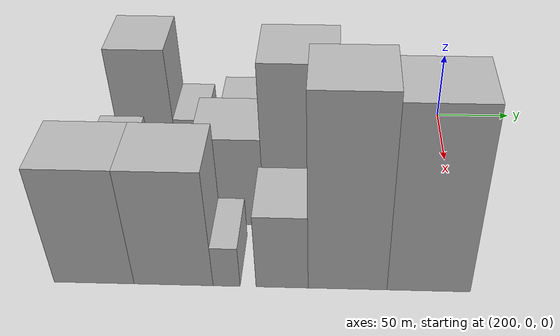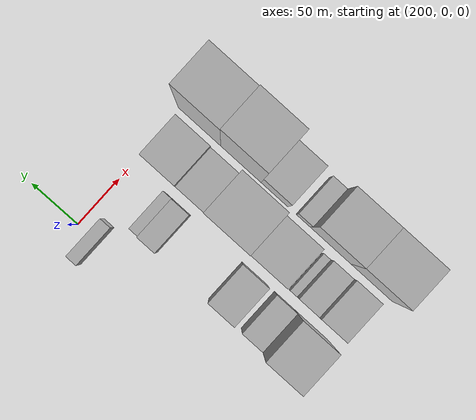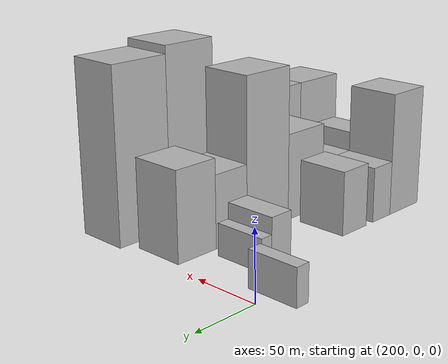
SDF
<sdf version="1.6">
 <world name="default">
  <model name="building_124">
   <static>1</static>
   <pose>198.0000 -18.1444 0 0.000000 0.000000 0.000000</pose>
   <link name="link">
    <pose>0 0 13.50 0 0 0</pose>
    <collision name="collision"><geometry><box><size>40.0000 10.9522 27.0000</size></box></geometry></collision>
    <visual name="visual">
     <cast_shadows>0</cast_shadows>
     <geometry><box><size>40.0000 10.9522 27.0000</size></box></geometry>
     <material>
      <script>
       <uri>model://HANNAS_wall/materials/scripts</uri>
       <uri>model://HANNAS_wall/materials/textures</uri>
       <name>vrc/HANNAS_wall</name>
      </script>
     </material>
    </visual>
   </link>
  </model>
  <model name="building_170">
   <static>1</static>
   <pose>247.0000 -193.7674 0 0.000000 0.000000 0.000000</pose>
   <link name="link">
    <pose>0 0 46.50 0 0 0</pose>
    <collision name="collision"><geometry><box><size>40.0000 36.1437 93.0000</size></box></geometry></collision>
    <visual name="visual">
     <cast_shadows>0</cast_shadows>
     <geometry><box><size>40.0000 36.1437 93.0000</size></box></geometry>
     <material>
      <script>
       <uri>model://HANNAS_wall/materials/scripts</uri>
       <uri>model://HANNAS_wall/materials/textures</uri>
       <name>vrc/HANNAS_wall</name>
      </script>
     </material>
    </visual>
   </link>
  </model>
  <model name="building_171">
   <static>1</static>
   <pose>247.0000 -165.0149 0 0.000000 0.000000 0.000000</pose>
   <link name="link">
    <pose>0 0 21.00 0 0 0</pose>
    <collision name="collision"><geometry><box><size>40.0000 21.3615 42.0000</size></box></geometry></collision>
    <visual name="visual">
     <cast_shadows>0</cast_shadows>
     <geometry><box><size>40.0000 21.3615 42.0000</size></box></geometry>
     <material>
      <script>
       <uri>model://HANNAS_wall/materials/scripts</uri>
       <uri>model://HANNAS_wall/materials/textures</uri>
       <name>vrc/HANNAS_wall</name>
      </script>
     </material>
    </visual>
   </link>
  </model>
  <model name="building_172">
   <static>1</static>
   <pose>247.0000 -132.5725 0 0.000000 0.000000 0.000000</pose>
   <link name="link">
    <pose>0 0 24.00 0 0 0</pose>
    <collision name="collision"><geometry><box><size>40.0000 27.5232 48.0000</size></box></geometry></collision>
    <visual name="visual">
     <cast_shadows>0</cast_shadows>
     <geometry><box><size>40.0000 27.5232 48.0000</size></box></geometry>
     <material>
      <script>
       <uri>model://HANNAS_wall/materials/scripts</uri>
       <uri>model://HANNAS_wall/materials/textures</uri>
       <name>vrc/HANNAS_wall</name>
      </script>
     </material>
    </visual>
   </link>
  </model>
  <model name="building_173">
   <static>1</static>
   <pose>247.0000 -53.6121 0 0.000000 0.000000 0.000000</pose>
   <link name="link">
    <pose>0 0 18.00 0 0 0</pose>
    <collision name="collision"><geometry><box><size>40.0000 18.7992 36.0000</size></box></geometry></collision>
    <visual name="visual">
     <cast_shadows>0</cast_shadows>
     <geometry><box><size>40.0000 18.7992 36.0000</size></box></geometry>
     <material>
      <script>
       <uri>model://HANNAS_wall/materials/scripts</uri>
       <uri>model://HANNAS_wall/materials/textures</uri>
       <name>vrc/HANNAS_wall</name>
      </script>
     </material>
    </visual>
   </link>
  </model>
  <model name="building_174">
   <static>1</static>
   <pose>247.0000 -39.3130 0 0.000000 0.000000 0.000000</pose>
   <link name="link">
    <pose>0 0 12.00 0 0 0</pose>
    <collision name="collision"><geometry><box><size>40.0000 9.7991 24.0000</size></box></geometry></collision>
    <visual name="visual">
     <cast_shadows>0</cast_shadows>
     <geometry><box><size>40.0000 9.7991 24.0000</size></box></geometry>
     <material>
      <script>
       <uri>model://HANNAS_wall/materials/scripts</uri>
       <uri>model://HANNAS_wall/materials/textures</uri>
       <name>vrc/HANNAS_wall</name>
      </script>
     </material>
    </visual>
   </link>
  </model>
  <model name="building_217">
   <static>1</static>
   <pose>296.0000 -204.2049 0 0.000000 0.000000 0.000000</pose>
   <link name="link">
    <pose>0 0 25.50 0 0 0</pose>
    <collision name="collision"><geometry><box><size>40.0000 26.7236 51.0000</size></box></geometry></collision>
    <visual name="visual">
     <cast_shadows>0</cast_shadows>
     <geometry><box><size>40.0000 26.7236 51.0000</size></box></geometry>
     <material>
      <script>
       <uri>model://HANNAS_wall/materials/scripts</uri>
       <uri>model://HANNAS_wall/materials/textures</uri>
       <name>vrc/HANNAS_wall</name>
      </script>
     </material>
    </visual>
   </link>
  </model>
  <model name="building_218">
   <static>1</static>
   <pose>296.0000 -180.2125 0 0.000000 0.000000 0.000000</pose>
   <link name="link">
    <pose>0 0 18.00 0 0 0</pose>
    <collision name="collision"><geometry><box><size>40.0000 21.2611 36.0000</size></box></geometry></collision>
    <visual name="visual">
     <cast_shadows>0</cast_shadows>
     <geometry><box><size>40.0000 21.2611 36.0000</size></box></geometry>
     <material>
      <script>
       <uri>model://HANNAS_wall/materials/scripts</uri>
       <uri>model://HANNAS_wall/materials/textures</uri>
       <name>vrc/HANNAS_wall</name>
      </script>
     </material>
    </visual>
   </link>
  </model>
  <model name="building_219">
   <static>1</static>
   <pose>296.0000 -165.8734 0 0.000000 0.000000 0.000000</pose>
   <link name="link">
    <pose>0 0 7.50 0 0 0</pose>
    <collision name="collision"><geometry><box><size>40.0000 7.4172 15.0000</size></box></geometry></collision>
    <visual name="visual">
     <cast_shadows>0</cast_shadows>
     <geometry><box><size>40.0000 7.4172 15.0000</size></box></geometry>
     <material>
      <script>
       <uri>model://HANNAS_wall/materials/scripts</uri>
       <uri>model://HANNAS_wall/materials/textures</uri>
       <name>vrc/HANNAS_wall</name>
      </script>
     </material>
    </visual>
   </link>
  </model>
  <model name="building_220">
   <static>1</static>
   <pose>296.0000 -135.4113 0 0.000000 0.000000 0.000000</pose>
   <link name="link">
    <pose>0 0 33.00 0 0 0</pose>
    <collision name="collision"><geometry><box><size>40.0000 39.5070 66.0000</size></box></geometry></collision>
    <visual name="visual">
     <cast_shadows>0</cast_shadows>
     <geometry><box><size>40.0000 39.5070 66.0000</size></box></geometry>
     <material>
      <script>
       <uri>model://HANNAS_wall/materials/scripts</uri>
       <uri>model://HANNAS_wall/materials/textures</uri>
       <name>vrc/HANNAS_wall</name>
      </script>
     </material>
    </visual>
   </link>
  </model>
  <model name="building_221">
   <static>1</static>
   <pose>296.0000 -93.7131 0 0.000000 0.000000 0.000000</pose>
   <link name="link">
    <pose>0 0 58.50 0 0 0</pose>
    <collision name="collision"><geometry><box><size>40.0000 43.8895 117.0000</size></box></geometry></collision>
    <visual name="visual">
     <cast_shadows>0</cast_shadows>
     <geometry><box><size>40.0000 43.8895 117.0000</size></box></geometry>
     <material>
      <script>
       <uri>model://HANNAS_wall/materials/scripts</uri>
       <uri>model://HANNAS_wall/materials/textures</uri>
       <name>vrc/HANNAS_wall</name>
      </script>
     </material>
    </visual>
   </link>
  </model>
  <model name="building_222">
   <static>1</static>
   <pose>296.0000 -56.4904 0 0.000000 0.000000 0.000000</pose>
   <link name="link">
    <pose>0 0 27.00 0 0 0</pose>
    <collision name="collision"><geometry><box><size>40.0000 30.5558 54.0000</size></box></geometry></collision>
    <visual name="visual">
     <cast_shadows>0</cast_shadows>
     <geometry><box><size>40.0000 30.5558 54.0000</size></box></geometry>
     <material>
      <script>
       <uri>model://HANNAS_wall/materials/scripts</uri>
       <uri>model://HANNAS_wall/materials/textures</uri>
       <name>vrc/HANNAS_wall</name>
      </script>
     </material>
    </visual>
   </link>
  </model>
  <model name="building_223">
   <static>1</static>
   <pose>296.0000 -23.6454 0 0.000000 0.000000 0.000000</pose>
   <link name="link">
    <pose>0 0 33.00 0 0 0</pose>
    <collision name="collision"><geometry><box><size>40.0000 35.1342 66.0000</size></box></geometry></collision>
    <visual name="visual">
     <cast_shadows>0</cast_shadows>
     <geometry><box><size>40.0000 35.1342 66.0000</size></box></geometry>
     <material>
      <script>
       <uri>model://HANNAS_wall/materials/scripts</uri>
       <uri>model://HANNAS_wall/materials/textures</uri>
       <name>vrc/HANNAS_wall</name>
      </script>
     </material>
    </visual>
   </link>
  </model>
  <model name="building_267">
   <static>1</static>
   <pose>345.0000 -207.9016 0 0.000000 0.000000 0.000000</pose>
   <link name="link">
    <pose>0 0 42.00 0 0 0</pose>
    <collision name="collision"><geometry><box><size>40.0000 45.3852 84.0000</size></box></geometry></collision>
    <visual name="visual">
     <cast_shadows>0</cast_shadows>
     <geometry><box><size>40.0000 45.3852 84.0000</size></box></geometry>
     <material>
      <script>
       <uri>model://HANNAS_wall/materials/scripts</uri>
       <uri>model://HANNAS_wall/materials/textures</uri>
       <name>vrc/HANNAS_wall</name>
      </script>
     </material>
    </visual>
   </link>
  </model>
  <model name="building_268">
   <static>1</static>
   <pose>345.0000 -162.8733 0 0.000000 0.000000 0.000000</pose>
   <link name="link">
    <pose>0 0 42.00 0 0 0</pose>
    <collision name="collision"><geometry><box><size>40.0000 44.6714 84.0000</size></box></geometry></collision>
    <visual name="visual">
     <cast_shadows>0</cast_shadows>
     <geometry><box><size>40.0000 44.6714 84.0000</size></box></geometry>
     <material>
      <script>
       <uri>model://HANNAS_wall/materials/scripts</uri>
       <uri>model://HANNAS_wall/materials/textures</uri>
       <name>vrc/HANNAS_wall</name>
      </script>
     </material>
    </visual>
   </link>
  </model>
  <model name="building_269">
   <static>1</static>
   <pose>345.0000 -132.9460 0 0.000000 0.000000 0.000000</pose>
   <link name="link">
    <pose>0 0 15.00 0 0 0</pose>
    <collision name="collision"><geometry><box><size>40.0000 15.1831 30.0000</size></box></geometry></collision>
    <visual name="visual">
     <cast_shadows>0</cast_shadows>
     <geometry><box><size>40.0000 15.1831 30.0000</size></box></geometry>
     <material>
      <script>
       <uri>model://HANNAS_wall/materials/scripts</uri>
       <uri>model://HANNAS_wall/materials/textures</uri>
       <name>vrc/HANNAS_wall</name>
      </script>
     </material>
    </visual>
   </link>
  </model>
  <model name="building_270">
   <static>1</static>
   <pose>345.0000 -101.7467 0 0.000000 0.000000 0.000000</pose>
   <link name="link">
    <pose>0 0 27.00 0 0 0</pose>
    <collision name="collision"><geometry><box><size>40.0000 29.2155 54.0000</size></box></geometry></collision>
    <visual name="visual">
     <cast_shadows>0</cast_shadows>
     <geometry><box><size>40.0000 29.2155 54.0000</size></box></geometry>
     <material>
      <script>
       <uri>model://HANNAS_wall/materials/scripts</uri>
       <uri>model://HANNAS_wall/materials/textures</uri>
       <name>vrc/HANNAS_wall</name>
      </script>
     </material>
    </visual>
   </link>
  </model>
  <model name="building_271">
   <static>1</static>
   <pose>345.0000 -65.0873 0 0.000000 0.000000 0.000000</pose>
   <link name="link">
    <pose>0 0 67.50 0 0 0</pose>
    <collision name="collision"><geometry><box><size>40.0000 44.1034 135.0000</size></box></geometry></collision>
    <visual name="visual">
     <cast_shadows>0</cast_shadows>
     <geometry><box><size>40.0000 44.1034 135.0000</size></box></geometry>
     <material>
      <script>
       <uri>model://HANNAS_wall/materials/scripts</uri>
       <uri>model://HANNAS_wall/materials/textures</uri>
       <name>vrc/HANNAS_wall</name>
      </script>
     </material>
    </visual>
   </link>
  </model>
  <model name="building_272">
   <static>1</static>
   <pose>345.0000 -19.8369 0 0.000000 0.000000 0.000000</pose>
   <link name="link">
    <pose>0 0 64.50 0 0 0</pose>
    <collision name="collision"><geometry><box><size>40.0000 46.3974 129.0000</size></box></geometry></collision>
    <visual name="visual">
     <cast_shadows>0</cast_shadows>
     <geometry><box><size>40.0000 46.3974 129.0000</size></box></geometry>
     <material>
      <script>
       <uri>model://HANNAS_wall/materials/scripts</uri>
       <uri>model://HANNAS_wall/materials/textures</uri>
       <name>vrc/HANNAS_wall</name>
      </script>
     </material>
    </visual>
   </link>
  </model>
 </world>
</sdf>
